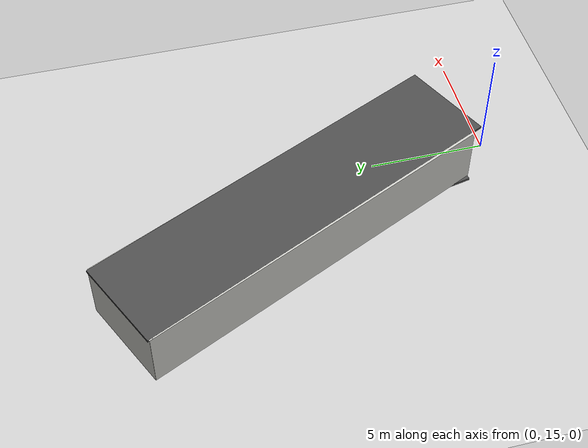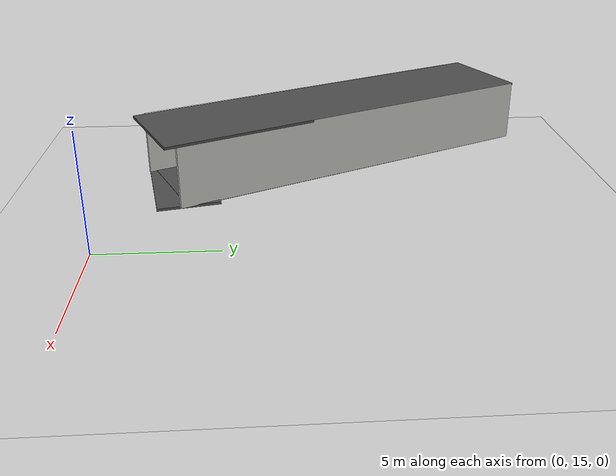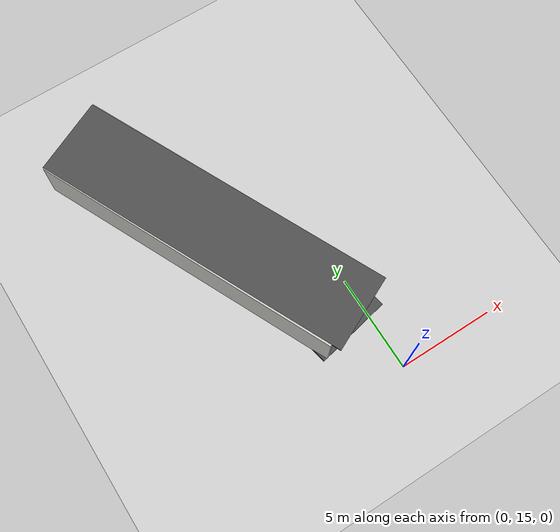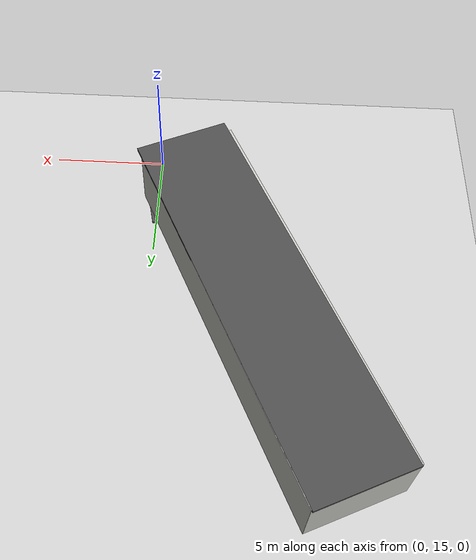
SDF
<sdf version="1.6">
 <world name="default">
  <model name="ground_plane">
   <static>1</static>
   <link name="link">
    <collision name="collision">
     <geometry><plane><normal>0 0 1</normal><size>100 100</size></plane></geometry>
     <surface><friction><ode><mu>100</mu><mu2>50</mu2></ode></friction></surface>
    </collision>
    <visual name="visual">
     <cast_shadows>0</cast_shadows>
     <geometry><plane><normal>0 0 1</normal><size>100 100</size></plane></geometry>
     <material>
      <script><uri>file://media/materials/scripts/gazebo.material</uri><name>Gazebo/Grey</name></script>
     </material>
    </visual>
   </link>
  </model>
  <model name="Untitled_1_clone_0">
   <link name="Wall_6">
    <pose>-0.52874 -7.68161 0 0 -0 0</pose>
    <inertial>
     <inertia><ixx>0</ixx><ixy>0</ixy><ixz>0</ixz><iyy>0</iyy><iyz>0</iyz><izz>0</izz></inertia>
     <mass>0</mass>
    </inertial>
    <visual name="Wall_6_Visual">
     <pose>0 0 1.25 0 -0 0</pose>
     <geometry><box><size>3.91776 0.15 2.5</size></box></geometry>
     <material>
      <script><uri>file://media/materials/scripts/gazebo.material</uri><name>Gazebo/CeilingTiled</name></script>
      <ambient>1 1 1 1</ambient>
      <shader type="pixel"/>
     </material>
     <meta><layer>0</layer></meta>
    </visual>
    <collision name="Wall_6_Collision">
     <pose>0 0 1.25 0 -0 0</pose>
     <geometry><box><size>3.91776 0.15 2.5</size></box></geometry>
     <surface>
      <friction>
       <ode><mu>1</mu><mu2>1</mu2><fdir1>0 0 0</fdir1><slip1>0</slip1><slip2>0</slip2></ode>
       <torsional>
        <coefficient>1</coefficient>
        <patch_radius>0</patch_radius>
        <surface_radius>0</surface_radius>
        <use_patch_radius>1</use_patch_radius>
        <ode><slip>0</slip></ode>
       </torsional>
      </friction>
      <bounce><restitution_coefficient>0</restitution_coefficient><threshold>1e+06</threshold></bounce>
      <contact>
       <collide_without_contact>0</collide_without_contact>
       <collide_without_contact_bitmask>1</collide_without_contact_bitmask>
       <collide_bitmask>1</collide_bitmask>
       <ode>
        <soft_cfm>0</soft_cfm>
        <soft_erp>0.2</soft_erp>
        <kp>1e+13</kp>
        <kd>1</kd>
        <max_vel>0.01</max_vel>
        <min_depth>0</min_depth>
       </ode>
       <bullet>
        <split_impulse>1</split_impulse>
        <split_impulse_penetration_threshold>-0.01</split_impulse_penetration_threshold>
        <soft_cfm>0</soft_cfm>
        <soft_erp>0.2</soft_erp>
        <kp>1e+13</kp>
        <kd>1</kd>
       </bullet>
      </contact>
     </surface>
    </collision>
   </link>
   <link name="Wall_7">
    <pose>1.35961 -5e-06 -0 0 -0 1.5708</pose>
    <visual name="Wall_7_Visual">
     <pose>0 0 1.25 0 -0 0</pose>
     <geometry><box><size>15.5 0.15 2.5</size></box></geometry>
     <material>
      <script><uri>file://media/materials/scripts/gazebo.material</uri><name>Gazebo/CeilingTiled</name></script>
      <ambient>1 1 1 1</ambient>
      <shader type="pixel"/>
     </material>
     <meta><layer>0</layer></meta>
    </visual>
    <collision name="Wall_7_Collision">
     <pose>0 0 1.25 0 -0 0</pose>
     <geometry><box><size>15.5 0.15 2.5</size></box></geometry>
     <surface>
      <friction>
       <ode><mu>1</mu><mu2>1</mu2><fdir1>0 0 0</fdir1><slip1>0</slip1><slip2>0</slip2></ode>
       <torsional>
        <coefficient>1</coefficient>
        <patch_radius>0</patch_radius>
        <surface_radius>0</surface_radius>
        <use_patch_radius>1</use_patch_radius>
        <ode><slip>0</slip></ode>
       </torsional>
      </friction>
      <bounce><restitution_coefficient>0</restitution_coefficient><threshold>1e+06</threshold></bounce>
      <contact>
       <collide_without_contact>0</collide_without_contact>
       <collide_without_contact_bitmask>1</collide_without_contact_bitmask>
       <collide_bitmask>1</collide_bitmask>
       <ode>
        <soft_cfm>0</soft_cfm>
        <soft_erp>0.2</soft_erp>
        <kp>1e+13</kp>
        <kd>1</kd>
        <max_vel>0.01</max_vel>
        <min_depth>0</min_depth>
       </ode>
       <bullet>
        <split_impulse>1</split_impulse>
        <split_impulse_penetration_threshold>-0.01</split_impulse_penetration_threshold>
        <soft_cfm>0</soft_cfm>
        <soft_erp>0.2</soft_erp>
        <kp>1e+13</kp>
        <kd>1</kd>
       </bullet>
      </contact>
     </surface>
    </collision>
   </link>
   <link name="Wall_9">
    <pose>-2.425 0 0 0 -0 1.5708</pose>
    <visual name="Wall_9_Visual">
     <pose>0 0 1.25 0 -0 0</pose>
     <geometry><box><size>15.5 0.15 2.5</size></box></geometry>
     <material>
      <script><uri>file://media/materials/scripts/gazebo.material</uri><name>Gazebo/CeilingTiled</name></script>
      <ambient>1 1 1 1</ambient>
      <shader type="pixel"/>
     </material>
     <meta><layer>0</layer></meta>
    </visual>
    <collision name="Wall_9_Collision">
     <pose>0 0 1.25 0 -0 0</pose>
     <geometry><box><size>15.5 0.15 2.5</size></box></geometry>
     <surface>
      <friction>
       <ode><mu>1</mu><mu2>1</mu2><fdir1>0 0 0</fdir1><slip1>0</slip1><slip2>0</slip2></ode>
       <torsional>
        <coefficient>1</coefficient>
        <patch_radius>0</patch_radius>
        <surface_radius>0</surface_radius>
        <use_patch_radius>1</use_patch_radius>
        <ode><slip>0</slip></ode>
       </torsional>
      </friction>
      <bounce><restitution_coefficient>0</restitution_coefficient><threshold>1e+06</threshold></bounce>
      <contact>
       <collide_without_contact>0</collide_without_contact>
       <collide_without_contact_bitmask>1</collide_without_contact_bitmask>
       <collide_bitmask>1</collide_bitmask>
       <ode>
        <soft_cfm>0</soft_cfm>
        <soft_erp>0.2</soft_erp>
        <kp>1e+13</kp>
        <kd>1</kd>
        <max_vel>0.01</max_vel>
        <min_depth>0</min_depth>
       </ode>
       <bullet>
        <split_impulse>1</split_impulse>
        <split_impulse_penetration_threshold>-0.01</split_impulse_penetration_threshold>
        <soft_cfm>0</soft_cfm>
        <soft_erp>0.2</soft_erp>
        <kp>1e+13</kp>
        <kd>1</kd>
       </bullet>
      </contact>
     </surface>
    </collision>
   </link>
   <static>1</static>
   <pose>-5.16972 24.5982 2.02784 0 0 -2.7042</pose>
  </model>
  <model name="asphalt_plane_clone_clone_clone_clone">
   <static>1</static>
   <link name="link">
    <collision name="collision"><geometry><box><size>3.67524 15.0034 0.1</size></box></geometry></collision>
    <visual name="visual">
     <cast_shadows>0</cast_shadows>
     <geometry><box><size>3.67524 15.0034 0.1</size></box></geometry>
     <material>
      <script>
       <uri>model://asphalt_plane/materials/scripts</uri>
       <uri>model://asphalt_plane/materials/textures</uri>
       <name>vrc/asphalt</name>
      </script>
     </material>
    </visual>
   </link>
   <pose>-4.67974 24.8418 2.01114 0 -0 0.438323</pose>
  </model>
  <model name="asphalt_plane_floor_0">
   <link name="link">
    <inertial>
     <inertia><ixx>0</ixx><ixy>0</ixy><ixz>0</ixz><iyy>0</iyy><iyz>0</iyz><izz>0</izz></inertia>
     <mass>0</mass>
    </inertial>
    <pose>0.169105 -2.29025 0 0 -0 0</pose>
    <visual name="visual">
     <cast_shadows>0</cast_shadows>
     <geometry><box><size>3.84906 2.371 0.1</size></box></geometry>
     <material>
      <script>
       <uri>model://asphalt_plane/materials/scripts</uri>
       <uri>model://asphalt_plane/materials/textures</uri>
       <name>vrc/asphalt</name>
      </script>
      <shader type="pixel"/>
     </material>
    </visual>
    <collision name="collision">
     <geometry><box><size>3.84906 2.371 0.1</size></box></geometry>
     <surface>
      <friction>
       <ode><mu>1</mu><mu2>1</mu2><fdir1>0 0 0</fdir1><slip1>0</slip1><slip2>0</slip2></ode>
       <torsional>
        <coefficient>1</coefficient>
        <patch_radius>0</patch_radius>
        <surface_radius>0</surface_radius>
        <use_patch_radius>1</use_patch_radius>
        <ode><slip>0</slip></ode>
       </torsional>
      </friction>
      <bounce><restitution_coefficient>0</restitution_coefficient><threshold>1e+06</threshold></bounce>
      <contact>
       <collide_without_contact>0</collide_without_contact>
       <collide_without_contact_bitmask>1</collide_without_contact_bitmask>
       <collide_bitmask>1</collide_bitmask>
       <ode>
        <soft_cfm>0</soft_cfm>
        <soft_erp>0.2</soft_erp>
        <kp>1e+13</kp>
        <kd>1</kd>
        <max_vel>0.01</max_vel>
        <min_depth>0</min_depth>
       </ode>
       <bullet>
        <split_impulse>1</split_impulse>
        <split_impulse_penetration_threshold>-0.01</split_impulse_penetration_threshold>
        <soft_cfm>0</soft_cfm>
        <soft_erp>0.2</soft_erp>
        <kp>1e+13</kp>
        <kd>1</kd>
       </bullet>
      </contact>
     </surface>
    </collision>
   </link>
   <static>1</static>
   <pose>-2.34857 20.7211 2.00407 0 -0 0.203624</pose>
  </model>
  <model name="asphalt_plane_floor_clone_0_clone">
   <link name="link">
    <inertial>
     <inertia><ixx>0</ixx><ixy>0</ixy><ixz>0</ixz><iyy>0</iyy><iyz>0</iyz><izz>0</izz></inertia>
     <mass>0</mass>
    </inertial>
    <pose>0.083107 -2.24648 0 0 -0 0</pose>
    <visual name="visual">
     <cast_shadows>0</cast_shadows>
     <geometry><box><size>3.84906 16.012 0.1</size></box></geometry>
     <material>
      <script>
       <uri>model://asphalt_plane/materials/scripts</uri>
       <uri>model://asphalt_plane/materials/textures</uri>
       <name>vrc/asphalt</name>
      </script>
      <shader type="pixel"/>
     </material>
    </visual>
    <collision name="collision">
     <geometry><box><size>3.84906 16.012 0.1</size></box></geometry>
     <surface>
      <friction>
       <ode><mu>1</mu><mu2>1</mu2><fdir1>0 0 0</fdir1><slip1>0</slip1><slip2>0</slip2></ode>
       <torsional>
        <coefficient>1</coefficient>
        <patch_radius>0</patch_radius>
        <surface_radius>0</surface_radius>
        <use_patch_radius>1</use_patch_radius>
        <ode><slip>0</slip></ode>
       </torsional>
      </friction>
      <bounce><restitution_coefficient>0</restitution_coefficient><threshold>1e+06</threshold></bounce>
      <contact>
       <collide_without_contact>0</collide_without_contact>
       <collide_without_contact_bitmask>1</collide_without_contact_bitmask>
       <collide_bitmask>1</collide_bitmask>
       <ode>
        <soft_cfm>0</soft_cfm>
        <soft_erp>0.2</soft_erp>
        <kp>1e+13</kp>
        <kd>1</kd>
        <max_vel>0.01</max_vel>
        <min_depth>0</min_depth>
       </ode>
       <bullet>
        <split_impulse>1</split_impulse>
        <split_impulse_penetration_threshold>-0.01</split_impulse_penetration_threshold>
        <soft_cfm>0</soft_cfm>
        <soft_erp>0.2</soft_erp>
        <kp>1e+13</kp>
        <kd>1</kd>
       </bullet>
      </contact>
     </surface>
    </collision>
   </link>
   <static>1</static>
   <pose>-5.6013 26.6519 4.48012 0 -0 0.440537</pose>
  </model>
 </world>
</sdf>
